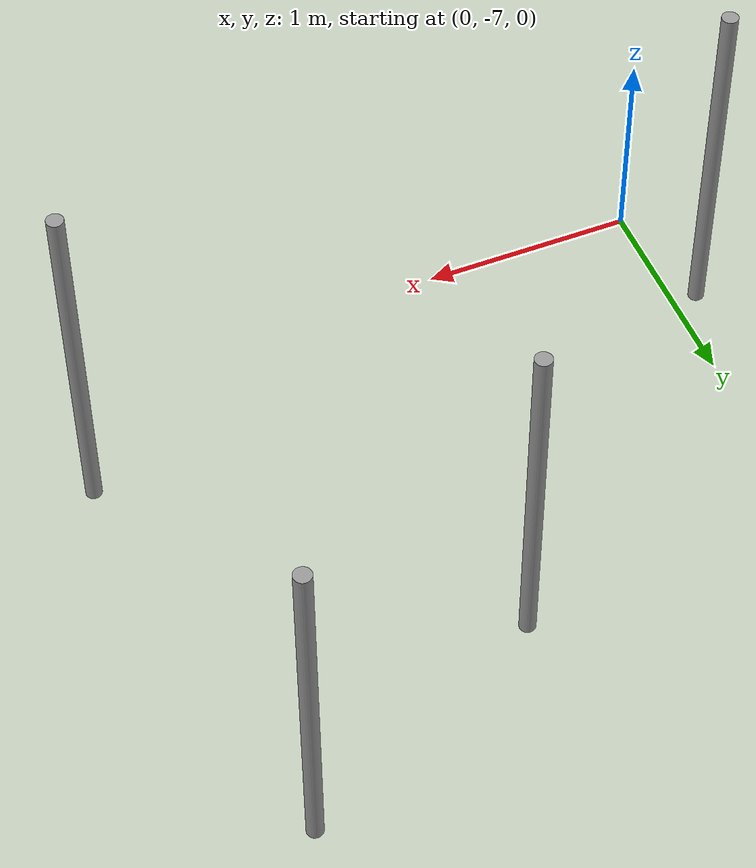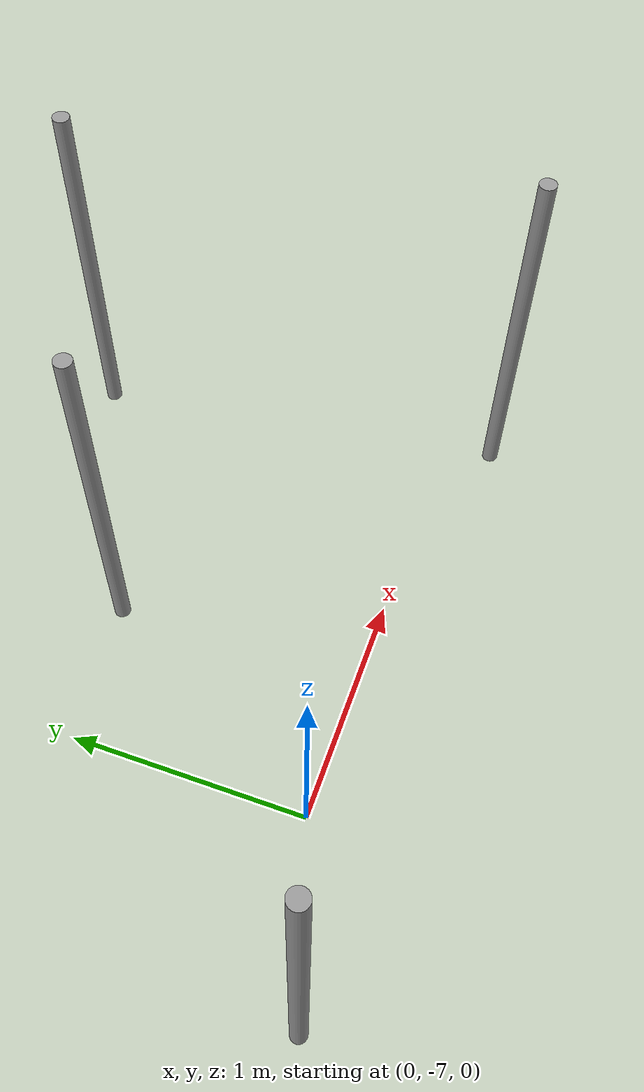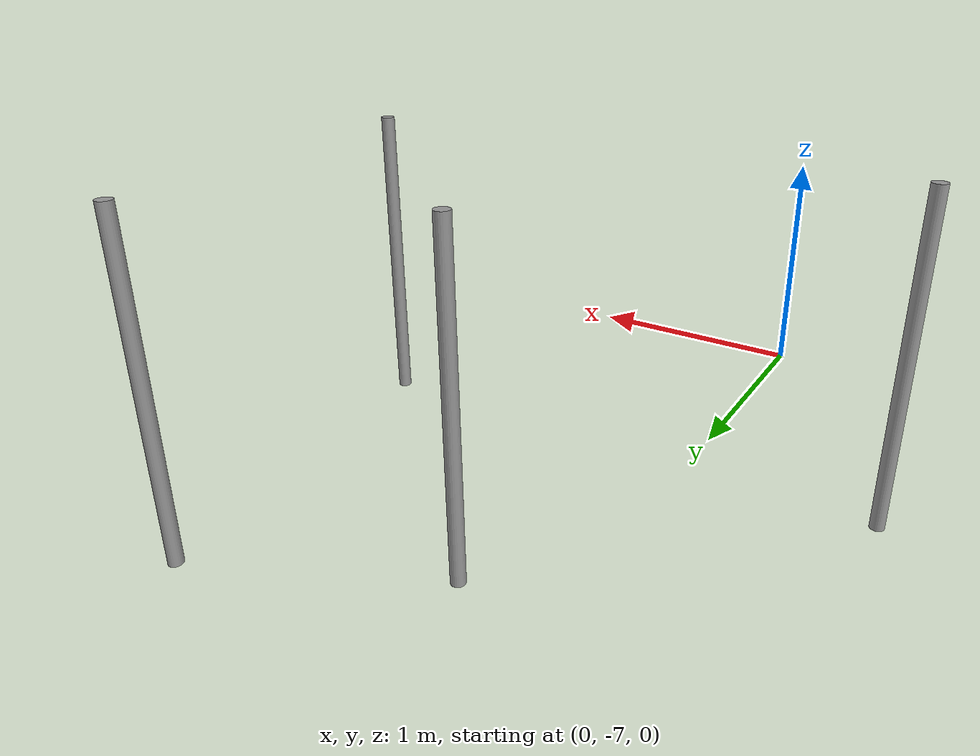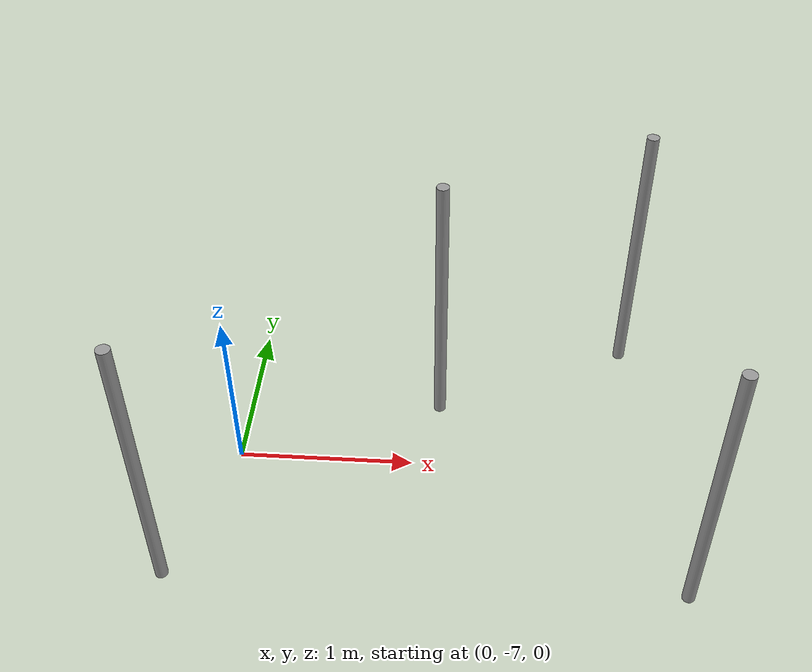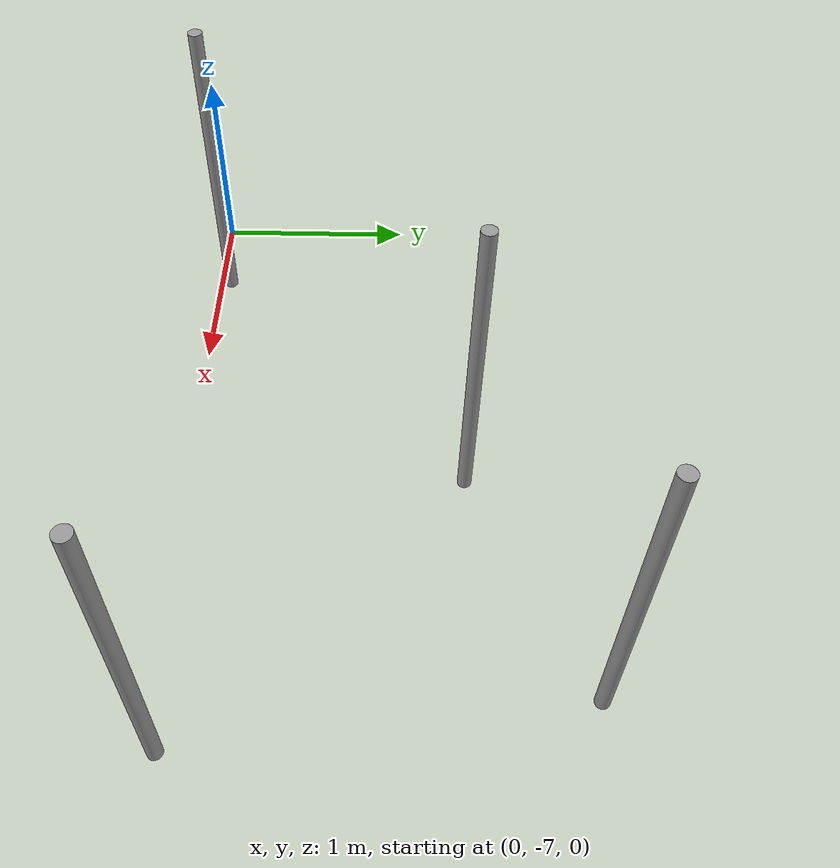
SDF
<sdf version="1.7">
 <model name="Complex1">
  <link name="link_0_clone_clone_27">
   <inertial>
    <mass>0.0136479</mass>
    <inertia>
     <ixx>0.00424334</ixx>
     <ixy>0</ixy>
     <ixz>0</ixz>
     <iyy>0.00424334</iyy>
     <iyz>0</iyz>
     <izz>1.17941e-05</izz>
    </inertia>
   </inertial>
   <pose>2.73237 -7.14297 0 0 -0 0</pose>
   <visual name="visual">
    <geometry><cylinder><radius>0.0415732</radius><length>1.93023</length></cylinder></geometry>
    <material>
     <lighting>1</lighting>
     <script><uri>file://media/materials/scripts/gazebo.material</uri><name>Gazebo/Grey</name></script>
     <shader type="pixel"/>
    </material>
   </visual>
   <collision name="collision">
    <geometry><cylinder><radius>0.041573</radius><length>1.93023</length></cylinder></geometry>
    <surface>
     <friction>
      <ode><mu>1</mu><mu2>1</mu2><fdir1>0 0 0</fdir1><slip1>0</slip1><slip2>0</slip2></ode>
      <torsional>
       <coefficient>1</coefficient>
       <patch_radius>0</patch_radius>
       <surface_radius>0</surface_radius>
       <use_patch_radius>1</use_patch_radius>
       <ode><slip>0</slip></ode>
      </torsional>
     </friction>
     <bounce><restitution_coefficient>0</restitution_coefficient><threshold>1e+06</threshold></bounce>
     <contact>
      <collide_without_contact>0</collide_without_contact>
      <collide_without_contact_bitmask>1</collide_without_contact_bitmask>
      <collide_bitmask>1</collide_bitmask>
      <ode>
       <soft_cfm>0</soft_cfm>
       <soft_erp>0.2</soft_erp>
       <kp>1e+13</kp>
       <kd>1</kd>
       <max_vel>0.01</max_vel>
       <min_depth>0</min_depth>
      </ode>
      <bullet>
       <split_impulse>1</split_impulse>
       <split_impulse_penetration_threshold>-0.01</split_impulse_penetration_threshold>
       <soft_cfm>0</soft_cfm>
       <soft_erp>0.2</soft_erp>
       <kp>1e+13</kp>
       <kd>1</kd>
      </bullet>
     </contact>
    </surface>
   </collision>
  </link>
  <link name="link_0_clone_clone_5">
   <inertial>
    <mass>0.0136479</mass>
    <inertia>
     <ixx>0.00424334</ixx>
     <ixy>0</ixy>
     <ixz>0</ixz>
     <iyy>0.00424334</iyy>
     <iyz>0</iyz>
     <izz>1.17941e-05</izz>
    </inertia>
   </inertial>
   <pose>-0.587139 -7.18008 0 0 -0 0</pose>
   <visual name="visual">
    <geometry><cylinder><radius>0.0415732</radius><length>1.93023</length></cylinder></geometry>
    <material>
     <lighting>1</lighting>
     <script><uri>file://media/materials/scripts/gazebo.material</uri><name>Gazebo/Grey</name></script>
     <shader type="pixel"/>
    </material>
   </visual>
   <collision name="collision">
    <geometry><cylinder><radius>0.041573</radius><length>1.93023</length></cylinder></geometry>
    <surface>
     <friction>
      <ode><mu>1</mu><mu2>1</mu2><fdir1>0 0 0</fdir1><slip1>0</slip1><slip2>0</slip2></ode>
      <torsional>
       <coefficient>1</coefficient>
       <patch_radius>0</patch_radius>
       <surface_radius>0</surface_radius>
       <use_patch_radius>1</use_patch_radius>
       <ode><slip>0</slip></ode>
      </torsional>
     </friction>
     <bounce><restitution_coefficient>0</restitution_coefficient><threshold>1e+06</threshold></bounce>
     <contact>
      <collide_without_contact>0</collide_without_contact>
      <collide_without_contact_bitmask>1</collide_without_contact_bitmask>
      <collide_bitmask>1</collide_bitmask>
      <ode>
       <soft_cfm>0</soft_cfm>
       <soft_erp>0.2</soft_erp>
       <kp>1e+13</kp>
       <kd>1</kd>
       <max_vel>0.01</max_vel>
       <min_depth>0</min_depth>
      </ode>
      <bullet>
       <split_impulse>1</split_impulse>
       <split_impulse_penetration_threshold>-0.01</split_impulse_penetration_threshold>
       <soft_cfm>0</soft_cfm>
       <soft_erp>0.2</soft_erp>
       <kp>1e+13</kp>
       <kd>1</kd>
      </bullet>
     </contact>
    </surface>
   </collision>
  </link>
  <link name="link_0_clone_clone_6">
   <inertial>
    <mass>0.0136479</mass>
    <inertia>
     <ixx>0.00424334</ixx>
     <ixy>0</ixy>
     <ixz>0</ixz>
     <iyy>0.00424334</iyy>
     <iyz>0</iyz>
     <izz>1.17941e-05</izz>
    </inertia>
   </inertial>
   <pose>1.09279 -5.59618 0 0 -0 0</pose>
   <visual name="visual">
    <geometry><cylinder><radius>0.0415732</radius><length>1.93023</length></cylinder></geometry>
    <material>
     <lighting>1</lighting>
     <script><uri>file://media/materials/scripts/gazebo.material</uri><name>Gazebo/Grey</name></script>
     <shader type="pixel"/>
    </material>
   </visual>
   <collision name="collision">
    <geometry><cylinder><radius>0.041573</radius><length>1.93023</length></cylinder></geometry>
    <surface>
     <friction>
      <ode><mu>1</mu><mu2>1</mu2><fdir1>0 0 0</fdir1><slip1>0</slip1><slip2>0</slip2></ode>
      <torsional>
       <coefficient>1</coefficient>
       <patch_radius>0</patch_radius>
       <surface_radius>0</surface_radius>
       <use_patch_radius>1</use_patch_radius>
       <ode><slip>0</slip></ode>
      </torsional>
     </friction>
     <bounce><restitution_coefficient>0</restitution_coefficient><threshold>1e+06</threshold></bounce>
     <contact>
      <collide_without_contact>0</collide_without_contact>
      <collide_without_contact_bitmask>1</collide_without_contact_bitmask>
      <collide_bitmask>1</collide_bitmask>
      <ode>
       <soft_cfm>0</soft_cfm>
       <soft_erp>0.2</soft_erp>
       <kp>1e+13</kp>
       <kd>1</kd>
       <max_vel>0.01</max_vel>
       <min_depth>0</min_depth>
      </ode>
      <bullet>
       <split_impulse>1</split_impulse>
       <split_impulse_penetration_threshold>-0.01</split_impulse_penetration_threshold>
       <soft_cfm>0</soft_cfm>
       <soft_erp>0.2</soft_erp>
       <kp>1e+13</kp>
       <kd>1</kd>
      </bullet>
     </contact>
    </surface>
   </collision>
  </link>
  <link name="link_0_clone_clone_7">
   <inertial>
    <mass>0.0136479</mass>
    <inertia>
     <ixx>0.00424334</ixx>
     <ixy>0</ixy>
     <ixz>0</ixz>
     <iyy>0.00424334</iyy>
     <iyz>0</iyz>
     <izz>1.17941e-05</izz>
    </inertia>
   </inertial>
   <pose>2.42537 -4.94418 0 0 -0 0</pose>
   <visual name="visual">
    <geometry><cylinder><radius>0.0415732</radius><length>1.93023</length></cylinder></geometry>
    <material>
     <lighting>1</lighting>
     <script><uri>file://media/materials/scripts/gazebo.material</uri><name>Gazebo/Grey</name></script>
     <shader type="pixel"/>
    </material>
   </visual>
   <collision name="collision">
    <geometry><cylinder><radius>0.041573</radius><length>1.93023</length></cylinder></geometry>
    <surface>
     <friction>
      <ode><mu>1</mu><mu2>1</mu2><fdir1>0 0 0</fdir1><slip1>0</slip1><slip2>0</slip2></ode>
      <torsional>
       <coefficient>1</coefficient>
       <patch_radius>0</patch_radius>
       <surface_radius>0</surface_radius>
       <use_patch_radius>1</use_patch_radius>
       <ode><slip>0</slip></ode>
      </torsional>
     </friction>
     <bounce><restitution_coefficient>0</restitution_coefficient><threshold>1e+06</threshold></bounce>
     <contact>
      <collide_without_contact>0</collide_without_contact>
      <collide_without_contact_bitmask>1</collide_without_contact_bitmask>
      <collide_bitmask>1</collide_bitmask>
      <ode>
       <soft_cfm>0</soft_cfm>
       <soft_erp>0.2</soft_erp>
       <kp>1e+13</kp>
       <kd>1</kd>
       <max_vel>0.01</max_vel>
       <min_depth>0</min_depth>
      </ode>
      <bullet>
       <split_impulse>1</split_impulse>
       <split_impulse_penetration_threshold>-0.01</split_impulse_penetration_threshold>
       <soft_cfm>0</soft_cfm>
       <soft_erp>0.2</soft_erp>
       <kp>1e+13</kp>
       <kd>1</kd>
      </bullet>
     </contact>
    </surface>
   </collision>
  </link>
  <static>true</static>
 </model>
</sdf>
